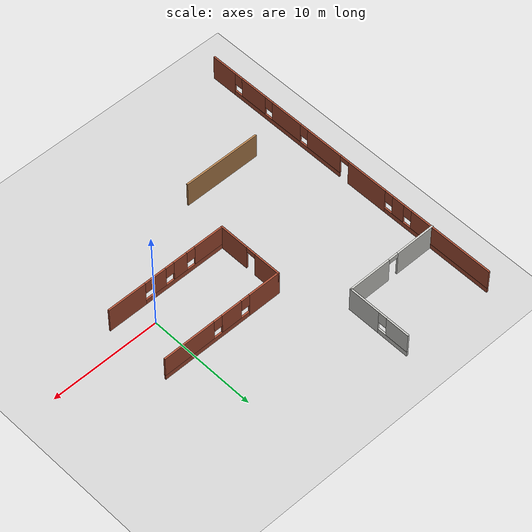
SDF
<sdf version="1.6">
 <world name="default">
  <model name="ground_plane">
   <static>1</static>
   <link name="link">
    <collision name="collision">
     <geometry><plane><normal>0 0 1</normal><size>100 100</size></plane></geometry>
     <surface>
      <contact><collide_bitmask>65535</collide_bitmask></contact>
      <friction><ode><mu>100</mu><mu2>50</mu2></ode></friction>
     </surface>
    </collision>
    <visual name="visual">
     <cast_shadows>0</cast_shadows>
     <geometry><plane><normal>0 0 1</normal><size>100 100</size></plane></geometry>
     <material>
      <script><uri>file://media/materials/scripts/gazebo.material</uri><name>Gazebo/Grey</name></script>
     </material>
    </visual>
   </link>
  </model>
  <model name="Office2">
   <pose>0.0583 0.03565 0 0 -0 0</pose>
   <link name="Wall_0">
    <pose>-19.9784 0.000161 0 0 -0 1.5708</pose>
    <visual name="Wall_0_Visual_0">
     <pose>-13.757 0 1.25 0 -0 0</pose>
     <geometry><box><size>2.48598 0.15 2.5</size></box></geometry>
     <material>
      <script><uri>file://media/materials/scripts/gazebo.material</uri><name>Gazebo/Bricks</name></script>
      <ambient>1 1 1 1</ambient>
     </material>
     <meta><layer>0</layer></meta>
    </visual>
    <collision name="Wall_0_Collision_0">
     <geometry><box><size>2.48598 0.15 2.5</size></box></geometry>
     <pose>-13.757 0 1.25 0 -0 0</pose>
    </collision>
    <visual name="Wall_0_Visual_1">
     <pose>2.2039 0 1.25 0 -0 0</pose>
     <geometry><box><size>3.96148 0.15 2.5</size></box></geometry>
     <material>
      <script><uri>file://media/materials/scripts/gazebo.material</uri><name>Gazebo/Bricks</name></script>
      <ambient>1 1 1 1</ambient>
     </material>
     <meta><layer>0</layer></meta>
    </visual>
    <collision name="Wall_0_Collision_1">
     <geometry><box><size>3.96148 0.15 2.5</size></box></geometry>
     <pose>2.2039 0 1.25 0 -0 0</pose>
    </collision>
    <visual name="Wall_0_Visual_2">
     <pose>-6.59543 0 0.25 0 -0 0</pose>
     <geometry><box><size>11.8372 0.15 0.5</size></box></geometry>
     <material>
      <script><uri>file://media/materials/scripts/gazebo.material</uri><name>Gazebo/Bricks</name></script>
      <ambient>1 1 1 1</ambient>
     </material>
     <meta><layer>0</layer></meta>
    </visual>
    <collision name="Wall_0_Collision_2">
     <geometry><box><size>11.8372 0.15 0.5</size></box></geometry>
     <pose>-6.59543 0 0.25 0 -0 0</pose>
    </collision>
    <visual name="Wall_0_Visual_3">
     <pose>9.59232 0 0.25 0 -0 0</pose>
     <geometry><box><size>10.8154 0.15 0.5</size></box></geometry>
     <material>
      <script><uri>file://media/materials/scripts/gazebo.material</uri><name>Gazebo/Bricks</name></script>
      <ambient>1 1 1 1</ambient>
     </material>
     <meta><layer>0</layer></meta>
    </visual>
    <collision name="Wall_0_Collision_3">
     <geometry><box><size>10.8154 0.15 0.5</size></box></geometry>
     <pose>9.59232 0 0.25 0 -0 0</pose>
    </collision>
    <visual name="Wall_0_Visual_4">
     <pose>-10.3805 0 1.5 0 -0 0</pose>
     <geometry><box><size>2.6671 0.15 2</size></box></geometry>
     <material>
      <script><uri>file://media/materials/scripts/gazebo.material</uri><name>Gazebo/Bricks</name></script>
      <ambient>1 1 1 1</ambient>
     </material>
     <meta><layer>0</layer></meta>
    </visual>
    <collision name="Wall_0_Collision_4">
     <geometry><box><size>2.6671 0.15 2</size></box></geometry>
     <pose>-10.3805 0 1.5 0 -0 0</pose>
    </collision>
    <visual name="Wall_0_Visual_5">
     <pose>-6.66573 0 1.5 0 -0 0</pose>
     <geometry><box><size>3.1624 0.15 2</size></box></geometry>
     <material>
      <script><uri>file://media/materials/scripts/gazebo.material</uri><name>Gazebo/Bricks</name></script>
      <ambient>1 1 1 1</ambient>
     </material>
     <meta><layer>0</layer></meta>
    </visual>
    <collision name="Wall_0_Collision_5">
     <geometry><box><size>3.1624 0.15 2</size></box></geometry>
     <pose>-6.66573 0 1.5 0 -0 0</pose>
    </collision>
    <visual name="Wall_0_Visual_6">
     <pose>-2.48068 0 1.5 0 -0 0</pose>
     <geometry><box><size>3.6077 0.15 2</size></box></geometry>
     <material>
      <script><uri>file://media/materials/scripts/gazebo.material</uri><name>Gazebo/Bricks</name></script>
      <ambient>1 1 1 1</ambient>
     </material>
     <meta><layer>0</layer></meta>
    </visual>
    <collision name="Wall_0_Collision_6">
     <geometry><box><size>3.6077 0.15 2</size></box></geometry>
     <pose>-2.48068 0 1.5 0 -0 0</pose>
    </collision>
    <visual name="Wall_0_Visual_7">
     <pose>-2.48068 0 1.5 0 -0 0</pose>
     <geometry><box><size>3.6077 0.15 2</size></box></geometry>
     <material>
      <script><uri>file://media/materials/scripts/gazebo.material</uri><name>Gazebo/Bricks</name></script>
      <ambient>1 1 1 1</ambient>
     </material>
     <meta><layer>0</layer></meta>
    </visual>
    <collision name="Wall_0_Collision_7">
     <geometry><box><size>3.6077 0.15 2</size></box></geometry>
     <pose>-2.48068 0 1.5 0 -0 0</pose>
    </collision>
    <visual name="Wall_0_Visual_8">
     <pose>5.57524 0 1.5 0 -0 0</pose>
     <geometry><box><size>1.1812 0.15 2</size></box></geometry>
     <material>
      <script><uri>file://media/materials/scripts/gazebo.material</uri><name>Gazebo/Bricks</name></script>
      <ambient>1 1 1 1</ambient>
     </material>
     <meta><layer>0</layer></meta>
    </visual>
    <collision name="Wall_0_Collision_8">
     <geometry><box><size>1.1812 0.15 2</size></box></geometry>
     <pose>5.57524 0 1.5 0 -0 0</pose>
    </collision>
    <visual name="Wall_0_Visual_9">
     <pose>10.9829 0 1.5 0 -0 0</pose>
     <geometry><box><size>8.03416 0.15 2</size></box></geometry>
     <material>
      <script><uri>file://media/materials/scripts/gazebo.material</uri><name>Gazebo/Bricks</name></script>
      <ambient>1 1 1 1</ambient>
     </material>
     <meta><layer>0</layer></meta>
    </visual>
    <collision name="Wall_0_Collision_9">
     <geometry><box><size>8.03416 0.15 2</size></box></geometry>
     <pose>10.9829 0 1.5 0 -0 0</pose>
    </collision>
    <visual name="Wall_0_Visual_10">
     <pose>-12.114 0 1.9 0 -0 0</pose>
     <geometry><box><size>0.8 0.15 1.2</size></box></geometry>
     <material>
      <script><uri>file://media/materials/scripts/gazebo.material</uri><name>Gazebo/Bricks</name></script>
      <ambient>1 1 1 1</ambient>
     </material>
     <meta><layer>0</layer></meta>
    </visual>
    <collision name="Wall_0_Collision_10">
     <geometry><box><size>0.8 0.15 1.2</size></box></geometry>
     <pose>-12.114 0 1.9 0 -0 0</pose>
    </collision>
    <visual name="Wall_0_Visual_11">
     <pose>4.58464 0 1.9 0 -0 0</pose>
     <geometry><box><size>0.8 0.15 1.2</size></box></geometry>
     <material>
      <script><uri>file://media/materials/scripts/gazebo.material</uri><name>Gazebo/Bricks</name></script>
      <ambient>1 1 1 1</ambient>
     </material>
     <meta><layer>0</layer></meta>
    </visual>
    <collision name="Wall_0_Collision_11">
     <geometry><box><size>0.8 0.15 1.2</size></box></geometry>
     <pose>4.58464 0 1.9 0 -0 0</pose>
    </collision>
    <visual name="Wall_0_Visual_12">
     <pose>-8.64693 0 1.9 0 -0 0</pose>
     <geometry><box><size>0.8 0.15 1.2</size></box></geometry>
     <material>
      <script><uri>file://media/materials/scripts/gazebo.material</uri><name>Gazebo/Bricks</name></script>
      <ambient>1 1 1 1</ambient>
     </material>
     <meta><layer>0</layer></meta>
    </visual>
    <collision name="Wall_0_Collision_12">
     <geometry><box><size>0.8 0.15 1.2</size></box></geometry>
     <pose>-8.64693 0 1.9 0 -0 0</pose>
    </collision>
    <visual name="Wall_0_Visual_13">
     <pose>-4.68453 0 1.9 0 -0 0</pose>
     <geometry><box><size>0.8 0.15 1.2</size></box></geometry>
     <material>
      <script><uri>file://media/materials/scripts/gazebo.material</uri><name>Gazebo/Bricks</name></script>
      <ambient>1 1 1 1</ambient>
     </material>
     <meta><layer>0</layer></meta>
    </visual>
    <collision name="Wall_0_Collision_13">
     <geometry><box><size>0.8 0.15 1.2</size></box></geometry>
     <pose>-4.68453 0 1.9 0 -0 0</pose>
    </collision>
    <visual name="Wall_0_Visual_14">
     <pose>6.56584 0 1.9 0 -0 0</pose>
     <geometry><box><size>0.8 0.15 1.2</size></box></geometry>
     <material>
      <script><uri>file://media/materials/scripts/gazebo.material</uri><name>Gazebo/Bricks</name></script>
      <ambient>1 1 1 1</ambient>
     </material>
     <meta><layer>0</layer></meta>
    </visual>
    <collision name="Wall_0_Collision_14">
     <geometry><box><size>0.8 0.15 1.2</size></box></geometry>
     <pose>6.56584 0 1.9 0 -0 0</pose>
    </collision>
    <visual name="Wall_0_Visual_15">
     <pose>-0.226838 0 2.25 0 -0 0</pose>
     <geometry><box><size>0.9 0.15 0.5</size></box></geometry>
     <material>
      <script><uri>file://media/materials/scripts/gazebo.material</uri><name>Gazebo/Bricks</name></script>
      <ambient>1 1 1 1</ambient>
     </material>
     <meta><layer>0</layer></meta>
    </visual>
    <collision name="Wall_0_Collision_15">
     <geometry><box><size>0.9 0.15 0.5</size></box></geometry>
     <pose>-0.226838 0 2.25 0 -0 0</pose>
    </collision>
    <visual name="Wall_0_Visual_16">
     <pose>-0.226838 0 2.25 0 -0 0</pose>
     <geometry><box><size>0.9 0.15 0.5</size></box></geometry>
     <material>
      <script><uri>file://media/materials/scripts/gazebo.material</uri><name>Gazebo/Bricks</name></script>
      <ambient>1 1 1 1</ambient>
     </material>
     <meta><layer>0</layer></meta>
    </visual>
    <collision name="Wall_0_Collision_16">
     <geometry><box><size>0.9 0.15 0.5</size></box></geometry>
     <pose>-0.226838 0 2.25 0 -0 0</pose>
    </collision>
   </link>
   <link name="Wall_11">
    <pose>-15.7131 9.0425 0 0 -0 0</pose>
    <visual name="Wall_11_Visual_0">
     <pose>-2.47517 0 1.25 0 -0 0</pose>
     <geometry><box><size>3.79967 0.15 2.5</size></box></geometry>
     <material>
      <script><uri>file://media/materials/scripts/gazebo.material</uri><name>Gazebo/CeilingTiled</name></script>
      <ambient>0.203922 0.396078 0.643137 1</ambient>
     </material>
     <meta><layer>0</layer></meta>
    </visual>
    <collision name="Wall_11_Collision_0">
     <geometry><box><size>3.79967 0.15 2.5</size></box></geometry>
     <pose>-2.47517 0 1.25 0 -0 0</pose>
    </collision>
    <visual name="Wall_11_Visual_1">
     <pose>2.34983 0 1.25 0 -0 0</pose>
     <geometry><box><size>4.05033 0.15 2.5</size></box></geometry>
     <material>
      <script><uri>file://media/materials/scripts/gazebo.material</uri><name>Gazebo/CeilingTiled</name></script>
      <ambient>0.203922 0.396078 0.643137 1</ambient>
     </material>
     <meta><layer>0</layer></meta>
    </visual>
    <collision name="Wall_11_Collision_1">
     <geometry><box><size>4.05033 0.15 2.5</size></box></geometry>
     <pose>2.34983 0 1.25 0 -0 0</pose>
    </collision>
    <visual name="Wall_11_Visual_2">
     <pose>-0.125334 0 2.25 0 -0 0</pose>
     <geometry><box><size>0.9 0.15 0.5</size></box></geometry>
     <material>
      <script><uri>file://media/materials/scripts/gazebo.material</uri><name>Gazebo/CeilingTiled</name></script>
      <ambient>0.203922 0.396078 0.643137 1</ambient>
     </material>
     <meta><layer>0</layer></meta>
    </visual>
    <collision name="Wall_11_Collision_2">
     <geometry><box><size>0.9 0.15 0.5</size></box></geometry>
     <pose>-0.125334 0 2.25 0 -0 0</pose>
    </collision>
   </link>
   <link name="Wall_15">
    <pose>-11.4131 11.9675 0 0 -0 1.5708</pose>
    <visual name="Wall_15_Visual_0">
     <pose>-1.49971 0 1.25 0 -0 0</pose>
     <geometry><box><size>3.00058 0.15 2.5</size></box></geometry>
     <material>
      <script><uri>file://media/materials/scripts/gazebo.material</uri><name>Gazebo/CeilingTiled</name></script>
      <ambient>1 1 1 1</ambient>
     </material>
     <meta><layer>0</layer></meta>
    </visual>
    <collision name="Wall_15_Collision_0">
     <geometry><box><size>3.00058 0.15 2.5</size></box></geometry>
     <pose>-1.49971 0 1.25 0 -0 0</pose>
    </collision>
    <visual name="Wall_15_Visual_1">
     <pose>1.50029 0 0.25 0 -0 0</pose>
     <geometry><box><size>2.99942 0.15 0.5</size></box></geometry>
     <material>
      <script><uri>file://media/materials/scripts/gazebo.material</uri><name>Gazebo/CeilingTiled</name></script>
      <ambient>1 1 1 1</ambient>
     </material>
     <meta><layer>0</layer></meta>
    </visual>
    <collision name="Wall_15_Collision_1">
     <geometry><box><size>2.99942 0.15 0.5</size></box></geometry>
     <pose>1.50029 0 0.25 0 -0 0</pose>
    </collision>
    <visual name="Wall_15_Visual_2">
     <pose>1.90029 0 1.5 0 -0 0</pose>
     <geometry><box><size>2.19942 0.15 2</size></box></geometry>
     <material>
      <script><uri>file://media/materials/scripts/gazebo.material</uri><name>Gazebo/CeilingTiled</name></script>
      <ambient>1 1 1 1</ambient>
     </material>
     <meta><layer>0</layer></meta>
    </visual>
    <collision name="Wall_15_Collision_2">
     <geometry><box><size>2.19942 0.15 2</size></box></geometry>
     <pose>1.90029 0 1.5 0 -0 0</pose>
    </collision>
    <visual name="Wall_15_Visual_3">
     <pose>0.400581 0 1.9 0 -0 0</pose>
     <geometry><box><size>0.8 0.15 1.2</size></box></geometry>
     <material>
      <script><uri>file://media/materials/scripts/gazebo.material</uri><name>Gazebo/CeilingTiled</name></script>
      <ambient>1 1 1 1</ambient>
     </material>
     <meta><layer>0</layer></meta>
    </visual>
    <collision name="Wall_15_Collision_3">
     <geometry><box><size>0.8 0.15 1.2</size></box></geometry>
     <pose>0.400581 0 1.9 0 -0 0</pose>
    </collision>
   </link>
   <link name="Wall_26">
    <pose>-2.87549 4.23102 0 0 -0 0</pose>
    <visual name="Wall_26_Visual_0">
     <pose>-4.21433 0 1.25 0 -0 0</pose>
     <geometry><box><size>3.07134 0.15 2.5</size></box></geometry>
     <material>
      <script><uri>file://media/materials/scripts/gazebo.material</uri><name>Gazebo/Bricks</name></script>
      <ambient>1 1 1 1</ambient>
     </material>
     <meta><layer>0</layer></meta>
    </visual>
    <collision name="Wall_26_Collision_0">
     <geometry><box><size>3.07134 0.15 2.5</size></box></geometry>
     <pose>-4.21433 0 1.25 0 -0 0</pose>
    </collision>
    <visual name="Wall_26_Visual_1">
     <pose>1.53567 0 0.25 0 -0 0</pose>
     <geometry><box><size>8.42866 0.15 0.5</size></box></geometry>
     <material>
      <script><uri>file://media/materials/scripts/gazebo.material</uri><name>Gazebo/Bricks</name></script>
      <ambient>1 1 1 1</ambient>
     </material>
     <meta><layer>0</layer></meta>
    </visual>
    <collision name="Wall_26_Collision_1">
     <geometry><box><size>8.42866 0.15 0.5</size></box></geometry>
     <pose>1.53567 0 0.25 0 -0 0</pose>
    </collision>
    <visual name="Wall_26_Visual_2">
     <pose>-0.898898 0 1.5 0 -0 0</pose>
     <geometry><box><size>1.95952 0.15 2</size></box></geometry>
     <material>
      <script><uri>file://media/materials/scripts/gazebo.material</uri><name>Gazebo/Bricks</name></script>
      <ambient>1 1 1 1</ambient>
     </material>
     <meta><layer>0</layer></meta>
    </visual>
    <collision name="Wall_26_Collision_2">
     <geometry><box><size>1.95952 0.15 2</size></box></geometry>
     <pose>-0.898898 0 1.5 0 -0 0</pose>
    </collision>
    <visual name="Wall_26_Visual_3">
     <pose>3.31543 0 1.5 0 -0 0</pose>
     <geometry><box><size>4.86913 0.15 2</size></box></geometry>
     <material>
      <script><uri>file://media/materials/scripts/gazebo.material</uri><name>Gazebo/Bricks</name></script>
      <ambient>1 1 1 1</ambient>
     </material>
     <meta><layer>0</layer></meta>
    </visual>
    <collision name="Wall_26_Collision_3">
     <geometry><box><size>4.86913 0.15 2</size></box></geometry>
     <pose>3.31543 0 1.5 0 -0 0</pose>
    </collision>
    <visual name="Wall_26_Visual_4">
     <pose>-2.27866 0 1.9 0 -0 0</pose>
     <geometry><box><size>0.8 0.15 1.2</size></box></geometry>
     <material>
      <script><uri>file://media/materials/scripts/gazebo.material</uri><name>Gazebo/Bricks</name></script>
      <ambient>1 1 1 1</ambient>
     </material>
     <meta><layer>0</layer></meta>
    </visual>
    <collision name="Wall_26_Collision_4">
     <geometry><box><size>0.8 0.15 1.2</size></box></geometry>
     <pose>-2.27866 0 1.9 0 -0 0</pose>
    </collision>
    <visual name="Wall_26_Visual_5">
     <pose>0.480865 0 1.9 0 -0 0</pose>
     <geometry><box><size>0.8 0.15 1.2</size></box></geometry>
     <material>
      <script><uri>file://media/materials/scripts/gazebo.material</uri><name>Gazebo/Bricks</name></script>
      <ambient>1 1 1 1</ambient>
     </material>
     <meta><layer>0</layer></meta>
    </visual>
    <collision name="Wall_26_Collision_5">
     <geometry><box><size>0.8 0.15 1.2</size></box></geometry>
     <pose>0.480865 0 1.9 0 -0 0</pose>
    </collision>
   </link>
   <link name="Wall_28">
    <pose>-2.87549 -1.86898 0 0 -0 3.14159</pose>
    <visual name="Wall_28_Visual_0">
     <pose>-3.95225 0 1.25 0 -0 0</pose>
     <geometry><box><size>3.59551 0.15 2.5</size></box></geometry>
     <material>
      <script><uri>file://media/materials/scripts/gazebo.material</uri><name>Gazebo/Bricks</name></script>
      <ambient>1 1 1 1</ambient>
     </material>
     <meta><layer>0</layer></meta>
    </visual>
    <collision name="Wall_28_Collision_0">
     <geometry><box><size>3.59551 0.15 2.5</size></box></geometry>
     <pose>-3.95225 0 1.25 0 -0 0</pose>
    </collision>
    <visual name="Wall_28_Visual_1">
     <pose>1.79775 0 0.25 0 -0 0</pose>
     <geometry><box><size>7.90449 0.15 0.5</size></box></geometry>
     <material>
      <script><uri>file://media/materials/scripts/gazebo.material</uri><name>Gazebo/Bricks</name></script>
      <ambient>1 1 1 1</ambient>
     </material>
     <meta><layer>0</layer></meta>
    </visual>
    <collision name="Wall_28_Collision_1">
     <geometry><box><size>7.90449 0.15 0.5</size></box></geometry>
     <pose>1.79775 0 0.25 0 -0 0</pose>
    </collision>
    <visual name="Wall_28_Visual_2">
     <pose>-0.728514 0 1.5 0 -0 0</pose>
     <geometry><box><size>1.25195 0.15 2</size></box></geometry>
     <material>
      <script><uri>file://media/materials/scripts/gazebo.material</uri><name>Gazebo/Bricks</name></script>
      <ambient>1 1 1 1</ambient>
     </material>
     <meta><layer>0</layer></meta>
    </visual>
    <collision name="Wall_28_Collision_2">
     <geometry><box><size>1.25195 0.15 2</size></box></geometry>
     <pose>-0.728514 0 1.5 0 -0 0</pose>
    </collision>
    <visual name="Wall_28_Visual_3">
     <pose>1.35882 0 1.5 0 -0 0</pose>
     <geometry><box><size>1.32271 0.15 2</size></box></geometry>
     <material>
      <script><uri>file://media/materials/scripts/gazebo.material</uri><name>Gazebo/Bricks</name></script>
      <ambient>1 1 1 1</ambient>
     </material>
     <meta><layer>0</layer></meta>
    </visual>
    <collision name="Wall_28_Collision_3">
     <geometry><box><size>1.32271 0.15 2</size></box></geometry>
     <pose>1.35882 0 1.5 0 -0 0</pose>
    </collision>
    <visual name="Wall_28_Visual_4">
     <pose>4.28509 0 1.5 0 -0 0</pose>
     <geometry><box><size>2.92983 0.15 2</size></box></geometry>
     <material>
      <script><uri>file://media/materials/scripts/gazebo.material</uri><name>Gazebo/Bricks</name></script>
      <ambient>1 1 1 1</ambient>
     </material>
     <meta><layer>0</layer></meta>
    </visual>
    <collision name="Wall_28_Collision_4">
     <geometry><box><size>2.92983 0.15 2</size></box></geometry>
     <pose>4.28509 0 1.5 0 -0 0</pose>
    </collision>
    <visual name="Wall_28_Visual_5">
     <pose>-1.75449 0 1.9 0 -0 0</pose>
     <geometry><box><size>0.8 0.15 1.2</size></box></geometry>
     <material>
      <script><uri>file://media/materials/scripts/gazebo.material</uri><name>Gazebo/Bricks</name></script>
      <ambient>1 1 1 1</ambient>
     </material>
     <meta><layer>0</layer></meta>
    </visual>
    <collision name="Wall_28_Collision_5">
     <geometry><box><size>0.8 0.15 1.2</size></box></geometry>
     <pose>-1.75449 0 1.9 0 -0 0</pose>
    </collision>
    <visual name="Wall_28_Visual_6">
     <pose>0.297463 0 1.9 0 -0 0</pose>
     <geometry><box><size>0.8 0.15 1.2</size></box></geometry>
     <material>
      <script><uri>file://media/materials/scripts/gazebo.material</uri><name>Gazebo/Bricks</name></script>
      <ambient>1 1 1 1</ambient>
     </material>
     <meta><layer>0</layer></meta>
    </visual>
    <collision name="Wall_28_Collision_6">
     <geometry><box><size>0.8 0.15 1.2</size></box></geometry>
     <pose>0.297463 0 1.9 0 -0 0</pose>
    </collision>
    <visual name="Wall_28_Visual_7">
     <pose>2.42017 0 1.9 0 -0 0</pose>
     <geometry><box><size>0.8 0.15 1.2</size></box></geometry>
     <material>
      <script><uri>file://media/materials/scripts/gazebo.material</uri><name>Gazebo/Bricks</name></script>
      <ambient>1 1 1 1</ambient>
     </material>
     <meta><layer>0</layer></meta>
    </visual>
    <collision name="Wall_28_Collision_7">
     <geometry><box><size>0.8 0.15 1.2</size></box></geometry>
     <pose>2.42017 0 1.9 0 -0 0</pose>
    </collision>
   </link>
   <link name="Wall_29">
    <pose>-8.55049 1.18102 0 0 -0 1.5708</pose>
    <visual name="Wall_29_Visual_0">
     <pose>-1.71302 0 1.25 0 -0 0</pose>
     <geometry><box><size>2.82396 0.15 2.5</size></box></geometry>
     <material>
      <script><uri>file://media/materials/scripts/gazebo.material</uri><name>Gazebo/Bricks</name></script>
      <ambient>1 1 1 1</ambient>
     </material>
     <meta><layer>0</layer></meta>
    </visual>
    <collision name="Wall_29_Collision_0">
     <geometry><box><size>2.82396 0.15 2.5</size></box></geometry>
     <pose>-1.71302 0 1.25 0 -0 0</pose>
    </collision>
    <visual name="Wall_29_Visual_1">
     <pose>1.86198 0 1.25 0 -0 0</pose>
     <geometry><box><size>2.52604 0.15 2.5</size></box></geometry>
     <material>
      <script><uri>file://media/materials/scripts/gazebo.material</uri><name>Gazebo/Bricks</name></script>
      <ambient>1 1 1 1</ambient>
     </material>
     <meta><layer>0</layer></meta>
    </visual>
    <collision name="Wall_29_Collision_1">
     <geometry><box><size>2.52604 0.15 2.5</size></box></geometry>
     <pose>1.86198 0 1.25 0 -0 0</pose>
    </collision>
    <visual name="Wall_29_Visual_2">
     <pose>0.148961 0 2.25 0 -0 0</pose>
     <geometry><box><size>0.9 0.15 0.5</size></box></geometry>
     <material>
      <script><uri>file://media/materials/scripts/gazebo.material</uri><name>Gazebo/Bricks</name></script>
      <ambient>1 1 1 1</ambient>
     </material>
     <meta><layer>0</layer></meta>
    </visual>
    <collision name="Wall_29_Collision_2">
     <geometry><box><size>0.9 0.15 0.5</size></box></geometry>
     <pose>0.148961 0 2.25 0 -0 0</pose>
    </collision>
   </link>
   <link name="Wall_33">
    <collision name="Wall_33_Collision">
     <geometry><box><size>7.25 0.15 2.5</size></box></geometry>
     <pose>0 0 1.25 0 -0 0</pose>
    </collision>
    <visual name="Wall_33_Visual">
     <pose>0 0 1.25 0 -0 0</pose>
     <geometry><box><size>7.25 0.15 2.5</size></box></geometry>
     <material>
      <script><uri>file://media/materials/scripts/gazebo.material</uri><name>Gazebo/Wood</name></script>
      <ambient>1 1 1 1</ambient>
     </material>
     <meta><layer>0</layer></meta>
    </visual>
    <pose>-13.0668 -6.73633 0 0 -0 0</pose>
   </link>
   <static>1</static>
  </model>
 </world>
</sdf>
